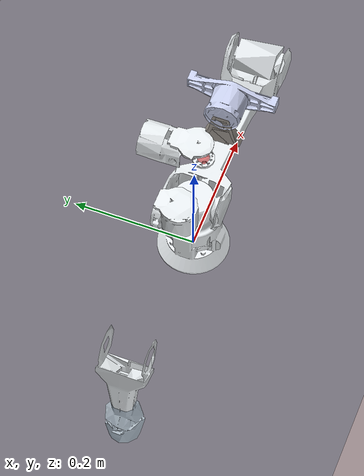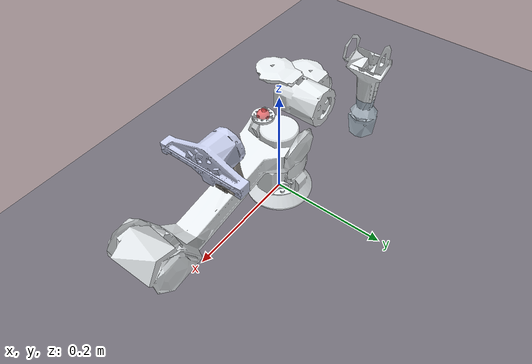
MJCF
<?xml version='1.0' encoding='utf-8'?>
<mujoco model="robot_with_actuators">
  <option timestep="0.002" gravity="0 0 -9.81" />

  <default>
    <joint damping="0.5" armature="0.1" frictionloss="0.1" />
    <geom friction="1.0 0.005 0.0001" solimp="0.9 0.95 0.001" solref="0.02 1" />
  </default>

  <visual>
    <headlight ambient="0.5 0.5 0.5" />
  </visual>
  <asset>
    <texture name="grid" type="2d" builtin="checker" width="512" height="512" rgb1="0.1 0.2 0.3" rgb2="0.2 0.3 0.4" />
    <material name="grid" texture="grid" texrepeat="1 1" texuniform="true" reflectance="0.2" />
  </asset>
  <include file="y1_with_gripper_base.xml" />
  <worldbody>
    <light name="top" pos="0 0 2" dir="0 0 -1" directional="true" />
    <geom name="ground" type="plane" size="0 0 0.05" material="grid" condim="3" />
  </worldbody>

  <!-- 夹爪耦合约束：joint8 跟随 joint7 镜像运动 -->
  <equality>
    <joint name="gripper_coupling" joint1="joint7" joint2="joint8" polycoef="0 -1 0 0 0" />
  </equality>

  <actuator>
    <!-- 机械臂 6 个关节 -->
    <motor name="act_joint1" joint="joint1" gear="1" ctrlrange="-30.0 30.0" forcerange="-30.0 30.0" />
    <motor name="act_joint2" joint="joint2" gear="1" ctrlrange="-100.0 100.0" forcerange="-100.0 100.0" />
    <motor name="act_joint3" joint="joint3" gear="1" ctrlrange="-30.0 30.0" forcerange="-30.0 30.0" />
    <motor name="act_joint4" joint="joint4" gear="1" ctrlrange="-10.0 10.0" forcerange="-10.0 10.0" />
    <motor name="act_joint5" joint="joint5" gear="1" ctrlrange="-10.0 10.0" forcerange="-10.0 10.0" />
    <motor name="act_joint6" joint="joint6" gear="1" ctrlrange="-10.0 10.0" forcerange="-10.0 10.0" />

    <!-- 夹爪：只控制 joint7，joint8 通过 equality 约束自动跟随 -->
    <motor name="act_gripper" joint="joint7" gear="1" ctrlrange="-3.0 3.0" forcerange="-3.0 3.0" />
  </actuator>
</mujoco>

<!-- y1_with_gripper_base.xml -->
<mujoco model="y1">
  <compiler angle="radian" meshdir="../meshes" />
  <asset>
    <mesh name="base_link" content_type="model/stl" file="base_link.STL" />
    <mesh name="link1" content_type="model/stl" file="link1.STL" />
    <mesh name="link2" content_type="model/stl" file="link2.STL" />
    <mesh name="link3" content_type="model/stl" file="link3.STL" />
    <mesh name="link4" content_type="model/stl" file="link4.STL" />
    <mesh name="link5" content_type="model/stl" file="link5.STL" />
    <mesh name="link6" content_type="model/stl" file="link6.STL" />
    <mesh name="gripper_base" content_type="model/stl" file="gripper_base.STL" />
    <mesh name="link7" content_type="model/stl" file="link7.STL" />
    <mesh name="link8" content_type="model/stl" file="link8.STL" />
  </asset>
  <worldbody>
    <geom type="mesh" rgba="0.898039 0.917647 0.929412 1" mesh="base_link" contype="0" conaffinity="0" density="0" group="1" />
    <body name="link1" pos="0 0 0.06675" quat="1 0 0 0">
      <inertial pos="0.000681167 -0.000462329 0.0457749" mass="0.465086" diaginertia="0.000229226849289421 0.000349392243512686 0.000228246849171451" />
      <joint name="joint1" pos="0 0 0" axis="0 0 1" range="-2.79 2.79" actuatorfrcrange="-30 30" />
      <geom type="mesh" rgba="0.898039 0.917647 0.929412 1" mesh="link1" contype="1" conaffinity="15" density="0" group="0" />
      <body name="link2" pos="0.00075 0 0.055" quat="0.707107 0.707107 0 0">
        <inertial pos="-0.188834 -0.00103697 -0.000652233" mass="1.00848" diaginertia="0.000410794336332579 0.0060417092412649 0.00611040782664147" />
        <joint name="joint2" pos="0 0 0" axis="0 0 1" range="-3.14 0" actuatorfrcrange="-100 100" />
        <geom type="mesh" rgba="0.898039 0.917647 0.929412 1" mesh="link2" contype="1" conaffinity="15" density="0" group="0" />
        <body name="link3" pos="-0.28 0 0" quat="1 0 0 0">
          <inertial pos="0.133032 0.0530016 0.000290607" mass="0.839664" diaginertia="0.000602602152841581 0.00179992027196969 0.00208247690008721" />
          <joint name="joint3" pos="0 0 0" axis="0 0 1" range="0 3.14" actuatorfrcrange="-30 30" />
          <geom type="mesh" rgba="0.898039 0.917647 0.929412 1" mesh="link3" contype="1" conaffinity="15" density="0" group="0" />
          <body name="link4" pos="0.215 0.063 0" quat="1 0 0 0">
            <inertial pos="0.0666891 0.0612495 0.00493164" mass="0.455193" diaginertia="0.000176582732613137 0.000211179169445067 0.000207766320179744" />
            <joint name="joint4" pos="0 0 0" axis="0 0 1" range="-2.145 1.413" actuatorfrcrange="-10 10" />
            <geom type="mesh" rgba="0.898039 0.917647 0.929412 1" mesh="link4" contype="1" conaffinity="15" density="0" group="0" />
            <body name="link5" pos="0.08 0.052 0.000249998" quat="0.707107 0.707107 0 0">
              <inertial pos="0.00248531 1.71804e-05 0.0400786" mass="0.373509" diaginertia="0.00016414068497646 0.000150227046495623 0.000141442797294447" />
              <joint name="joint5" pos="0 0 0" axis="0 0 1" range="-1.482 1.482" actuatorfrcrange="-10 10" />
              <geom type="mesh" rgba="0.898039 0.917647 0.929412 1" mesh="link5" contype="1" conaffinity="15" density="0" group="0" />
              <body name="link6" pos="0.0235 0 0.044" quat="0 -1 0 0">
                <inertial pos="0.0108106656274518 0.000127504395052592 0.00016010488602905" mass="0.0724468602058996" diaginertia="3.15031267100887E-05 1.66634761480036E-05 1.66897035808186E-05" />
                <joint name="joint6" pos="0 0 0" axis="1 0 0" range="-2.529 2.529" actuatorfrcrange="-10 10" />
                <geom type="mesh" rgba="0.898039 0.917647 0.929412 1" mesh="link6" contype="1" conaffinity="15" density="0" group="0" />
                <!-- Site 标记：link6 末端执行器位置 -->
                <site name="ee_link6" pos="0 0 0" size="0.01" rgba="1 0 0 0.5" type="sphere" />
                <body name="gripper_base" pos="0.0758 0 0" quat="0.0 0.707106781186548 0.0 0.707106781186548">
                  <inertial pos="-0.00722300540551239 -2.86486663753245E-07 -0.0281150308975901" mass="0.436099620967633" diaginertia="0.000287710583661291 0.000225234897934958 0.000396215714285049" />
                  <geom type="mesh" rgba="0.792157 0.819608 0.933333 1" mesh="gripper_base" contype="1" conaffinity="15" density="0" group="0" />
                  <body name="link7" pos="0 -0.00275 0" quat="0.707106781186548 0 0 -0.707106781186548">
                    <inertial pos="-0.0155281 -0.00524433 0.0238751" mass="0.0661691" diaginertia="1.90679558147809E-05 1.66105397877526E-05 8.26385767759474E-06" />
                    <joint name="joint7" pos="0 0 0" axis="1 0 0" type="slide" range="-0.05 0" actuatorfrcrange="-3 3" />
                    <geom type="mesh" rgba="0.647059 0.619608 0.588235 1" mesh="link7" contype="1" conaffinity="15" density="0" group="0" />
                  </body>
                  <body name="link8" pos="0 0.00275 0" quat="0.707106781186548 0 0 -0.707106781186548">
                    <inertial pos="0.015528 -0.00524433 0.0241082" mass="0.0661691" diaginertia="1.90679558147809E-05 1.66105397877526E-05 8.26385767759474E-06" />
                    <joint name="joint8" pos="0 0 0" axis="1 0 0" type="slide" range="0 0.05" actuatorfrcrange="-3 3" />
                    <geom type="mesh" rgba="0.647059 0.619608 0.588235 1" mesh="link8" contype="1" conaffinity="15" density="0" group="0" />
                  </body>
                </body>
              </body>
            </body>
          </body>
        </body>
      </body>
    </body>
  </worldbody>
</mujoco>
